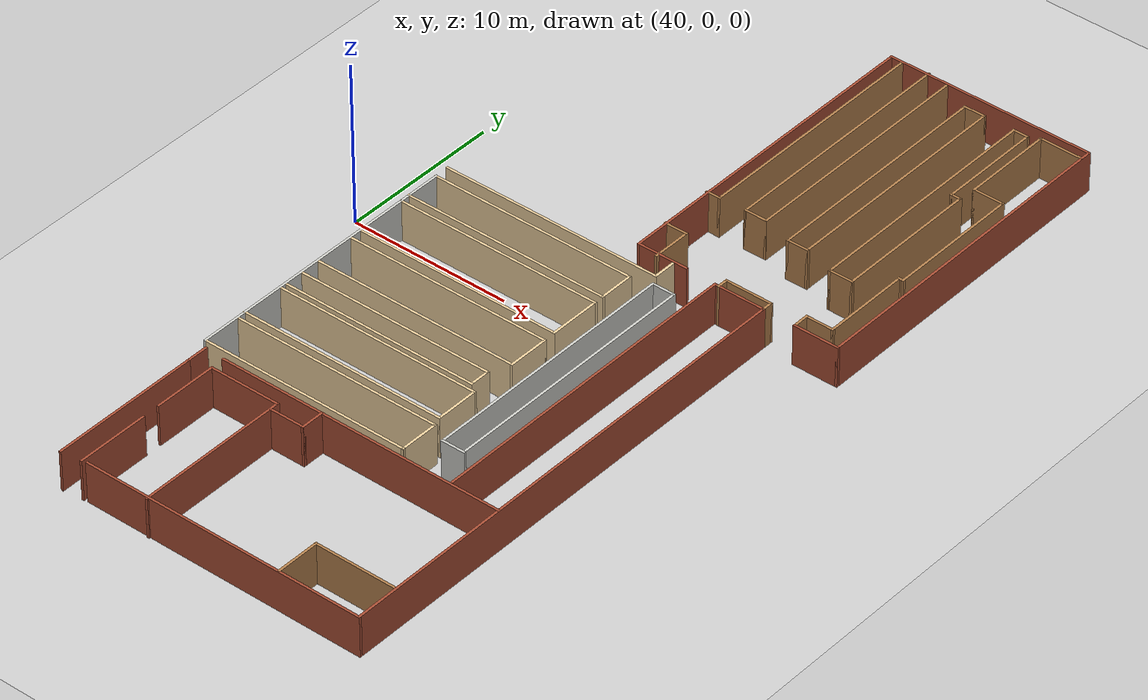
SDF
<sdf version="1.6">
 <world name="default">
  <model name="ground_plane">
   <static>1</static>
   <link name="link">
    <collision name="collision">
     <geometry><plane><normal>0 0 1</normal><size>100 100</size></plane></geometry>
     <surface><friction><ode><mu>100</mu><mu2>50</mu2></ode></friction></surface>
    </collision>
    <visual name="visual">
     <cast_shadows>0</cast_shadows>
     <geometry><plane><normal>0 0 1</normal><size>100 100</size></plane></geometry>
     <material>
      <script><uri>file://media/materials/scripts/gazebo.material</uri><name>Gazebo/Grey</name></script>
     </material>
    </visual>
   </link>
  </model>
  <model name="jeonju-2023">
   <pose>-5.65351 1.61412 0 0 -0 0</pose>
   <link name="Wall_113">
    <collision name="Wall_113_Collision">
     <geometry><box><size>20.779 0.15 2.5</size></box></geometry>
     <pose>0 0 1.25 0 -0 0</pose>
    </collision>
    <visual name="Wall_113_Visual">
     <pose>0 0 1.25 0 -0 0</pose>
     <geometry><box><size>20.779 0.15 2.5</size></box></geometry>
     <material>
      <script><uri>file://media/materials/scripts/gazebo.material</uri><name>Gazebo/Bricks</name></script>
      <ambient>1 1 1 1</ambient>
     </material>
    </visual>
    <pose>59.8935 14.256 0 0 -0 1.5708</pose>
   </link>
   <link name="Wall_114">
    <collision name="Wall_114_Collision">
     <geometry><box><size>13 0.15 2.5</size></box></geometry>
     <pose>0 0 1.25 0 -0 0</pose>
    </collision>
    <visual name="Wall_114_Visual">
     <pose>0 0 1.25 0 -0 0</pose>
     <geometry><box><size>13 0.15 2.5</size></box></geometry>
     <material>
      <script><uri>file://media/materials/scripts/gazebo.material</uri><name>Gazebo/Bricks</name></script>
      <ambient>1 1 1 1</ambient>
     </material>
    </visual>
    <pose>66.3185 24.5705 0 0 -0 0</pose>
   </link>
   <link name="Wall_115">
    <collision name="Wall_115_Collision">
     <geometry><box><size>20.85 0.15 2.5</size></box></geometry>
     <pose>0 0 1.25 0 -0 0</pose>
    </collision>
    <visual name="Wall_115_Visual">
     <pose>0 0 1.25 0 -0 0</pose>
     <geometry><box><size>20.85 0.15 2.5</size></box></geometry>
     <material>
      <script><uri>file://media/materials/scripts/gazebo.material</uri><name>Gazebo/Bricks</name></script>
      <ambient>1 1 1 1</ambient>
     </material>
    </visual>
    <pose>72.7435 14.2205 0 0 0 -1.5708</pose>
   </link>
   <link name="Wall_117">
    <collision name="Wall_117_Collision">
     <geometry><box><size>30.5 0.15 2.5</size></box></geometry>
     <pose>0 0 1.25 0 -0 0</pose>
    </collision>
    <visual name="Wall_117_Visual">
     <pose>0 0 1.25 0 -0 0</pose>
     <geometry><box><size>30.5 0.15 2.5</size></box></geometry>
     <material>
      <script><uri>file://media/materials/scripts/gazebo.material</uri><name>Gazebo/Bricks</name></script>
      <ambient>1 1 1 1</ambient>
     </material>
    </visual>
    <pose>68.0095 -11.3075 0 0 0 -1.5708</pose>
   </link>
   <link name="Wall_118">
    <collision name="Wall_118_Collision">
     <geometry><box><size>17.75 0.15 2.5</size></box></geometry>
     <pose>0 0 1.25 0 -0 0</pose>
    </collision>
    <visual name="Wall_118_Visual">
     <pose>0 0 1.25 0 -0 0</pose>
     <geometry><box><size>17.75 0.15 2.5</size></box></geometry>
     <material>
      <script><uri>file://media/materials/scripts/gazebo.material</uri><name>Gazebo/Bricks</name></script>
      <ambient>1 1 1 1</ambient>
     </material>
    </visual>
    <pose>59.2095 -26.4825 0 0 -0 3.14159</pose>
   </link>
   <link name="Wall_120">
    <collision name="Wall_120_Collision">
     <geometry><box><size>9.25 0.15 2.5</size></box></geometry>
     <pose>0 0 1.25 0 -0 0</pose>
    </collision>
    <visual name="Wall_120_Visual">
     <pose>0 0 1.25 0 -0 0</pose>
     <geometry><box><size>9.25 0.15 2.5</size></box></geometry>
     <material>
      <script><uri>file://media/materials/scripts/gazebo.material</uri><name>Gazebo/Bricks</name></script>
      <ambient>1 1 1 1</ambient>
     </material>
    </visual>
    <pose>48.8245 -22.1205 0 0 0 -1.5708</pose>
   </link>
   <link name="Wall_128">
    <collision name="Wall_128_Collision">
     <geometry><box><size>1.441 0.15 2.5</size></box></geometry>
     <pose>0 0 1.25 0 -0 0</pose>
    </collision>
    <visual name="Wall_128_Visual">
     <pose>0 0 1.25 0 -0 0</pose>
     <geometry><box><size>1.441 0.15 2.5</size></box></geometry>
     <material>
      <script><uri>file://media/materials/scripts/gazebo.material</uri><name>Gazebo/Bricks</name></script>
      <ambient>1 1 1 1</ambient>
     </material>
    </visual>
    <pose>48.8245 -16.925 0 0 0 -1.5708</pose>
   </link>
   <link name="Wall_135">
    <collision name="Wall_135_Collision">
     <geometry><box><size>2.869 0.15 2.5</size></box></geometry>
     <pose>0 0 1.25 0 -0 0</pose>
    </collision>
    <visual name="Wall_135_Visual">
     <pose>0 0 1.25 0 -0 0</pose>
     <geometry><box><size>2.869 0.15 2.5</size></box></geometry>
     <material>
      <script><uri>file://media/materials/scripts/gazebo.material</uri><name>Gazebo/Bricks</name></script>
      <ambient>1 1 1 1</ambient>
     </material>
    </visual>
    <pose>71.384 3.8705 0 0 -0 0</pose>
   </link>
   <link name="Wall_387">
    <collision name="Wall_387_Collision">
     <geometry><box><size>18 0.15 2.5</size></box></geometry>
     <pose>0 0 1.25 0 -0 0</pose>
    </collision>
    <visual name="Wall_387_Visual">
     <pose>0 0 1.25 0 -0 0</pose>
     <geometry><box><size>18 0.15 2.5</size></box></geometry>
     <material>
      <script><uri>file://media/materials/scripts/gazebo.material</uri><name>Gazebo/Bricks</name></script>
      <ambient>1 1 1 1</ambient>
     </material>
    </visual>
    <pose>59.0205 -16.3555 0 0 -0 0</pose>
   </link>
   <link name="Wall_389">
    <collision name="Wall_389_Collision">
     <geometry><box><size>4 0.15 2.5</size></box></geometry>
     <pose>0 0 1.25 0 -0 0</pose>
    </collision>
    <visual name="Wall_389_Visual">
     <pose>0 0 1.25 0 -0 0</pose>
     <geometry><box><size>4 0.15 2.5</size></box></geometry>
     <material>
      <script><uri>file://media/materials/scripts/gazebo.material</uri><name>Gazebo/Bricks</name></script>
      <ambient>1 1 1 1</ambient>
     </material>
    </visual>
    <pose>50.0955 -19.1445 0 0 -0 1.5708</pose>
   </link>
   <link name="Wall_390">
    <collision name="Wall_390_Collision">
     <geometry><box><size>4.5 0.15 2.5</size></box></geometry>
     <pose>0 0 1.25 0 -0 0</pose>
    </collision>
    <visual name="Wall_390_Visual">
     <pose>0 0 1.25 0 -0 0</pose>
     <geometry><box><size>4.5 0.15 2.5</size></box></geometry>
     <material>
      <script><uri>file://media/materials/scripts/gazebo.material</uri><name>Gazebo/Bricks</name></script>
      <ambient>1 1 1 1</ambient>
     </material>
    </visual>
    <pose>52.2705 -17.2195 0 0 -0 0</pose>
   </link>
   <link name="Wall_391">
    <collision name="Wall_391_Collision">
     <geometry><box><size>9.5 0.15 2.5</size></box></geometry>
     <pose>0 0 1.25 0 -0 0</pose>
    </collision>
    <visual name="Wall_391_Visual">
     <pose>0 0 1.25 0 -0 0</pose>
     <geometry><box><size>9.5 0.15 2.5</size></box></geometry>
     <material>
      <script><uri>file://media/materials/scripts/gazebo.material</uri><name>Gazebo/Bricks</name></script>
      <ambient>1 1 1 1</ambient>
     </material>
    </visual>
    <pose>54.4455 -21.8945 0 0 0 -1.5708</pose>
   </link>
   <link name="Wall_393">
    <collision name="Wall_393_Collision">
     <geometry><box><size>4.5 0.15 2.5</size></box></geometry>
     <pose>0 0 1.25 0 -0 0</pose>
    </collision>
    <visual name="Wall_393_Visual">
     <pose>0 0 1.25 0 -0 0</pose>
     <geometry><box><size>4.5 0.15 2.5</size></box></geometry>
     <material>
      <script><uri>file://media/materials/scripts/gazebo.material</uri><name>Gazebo/Bricks</name></script>
      <ambient>1 1 1 1</ambient>
     </material>
    </visual>
    <pose>50.0955 -24.3705 0 0 0 -1.5708</pose>
   </link>
   <link name="Wall_395">
    <collision name="Wall_395_Collision">
     <geometry><box><size>2.25 0.15 2.5</size></box></geometry>
     <pose>0 0 1.25 0 -0 0</pose>
    </collision>
    <visual name="Wall_395_Visual">
     <pose>0 0 1.25 0 -0 0</pose>
     <geometry><box><size>2.25 0.15 2.5</size></box></geometry>
     <material>
      <script><uri>file://media/materials/scripts/gazebo.material</uri><name>Gazebo/Bricks</name></script>
      <ambient>1 1 1 1</ambient>
     </material>
    </visual>
    <pose>55.5435 -17.7275 0 0 -0 0</pose>
   </link>
   <link name="Wall_396">
    <collision name="Wall_396_Collision">
     <geometry><box><size>1.5 0.15 2.5</size></box></geometry>
     <pose>0 0 1.25 0 -0 0</pose>
    </collision>
    <visual name="Wall_396_Visual">
     <pose>0 0 1.25 0 -0 0</pose>
     <geometry><box><size>1.5 0.15 2.5</size></box></geometry>
     <material>
      <script><uri>file://media/materials/scripts/gazebo.material</uri><name>Gazebo/Bricks</name></script>
      <ambient>1 1 1 1</ambient>
     </material>
    </visual>
    <pose>56.5935 -17.0525 0 0 -0 1.5708</pose>
   </link>
   <link name="Wall_398">
    <collision name="Wall_398_Collision">
     <geometry><box><size>2.75 0.15 2.5</size></box></geometry>
     <pose>0 0 1.25 0 -0 0</pose>
    </collision>
    <visual name="Wall_398_Visual">
     <pose>0 0 1.25 0 -0 0</pose>
     <geometry><box><size>2.75 0.15 2.5</size></box></geometry>
     <material>
      <script><uri>file://media/materials/scripts/gazebo.material</uri><name>Gazebo/Wood</name></script>
      <ambient>1 1 1 1</ambient>
     </material>
    </visual>
    <pose>62.9005 -25.1165 0 0 -0 1.5708</pose>
   </link>
   <link name="Wall_399">
    <collision name="Wall_399_Collision">
     <geometry><box><size>5.25 0.15 2.5</size></box></geometry>
     <pose>0 0 1.25 0 -0 0</pose>
    </collision>
    <visual name="Wall_399_Visual">
     <pose>0 0 1.25 0 -0 0</pose>
     <geometry><box><size>5.25 0.15 2.5</size></box></geometry>
     <material>
      <script><uri>file://media/materials/scripts/gazebo.material</uri><name>Gazebo/Wood</name></script>
      <ambient>1 1 1 1</ambient>
     </material>
    </visual>
    <pose>65.4505 -23.8165 0 0 -0 0</pose>
   </link>
   <link name="Wall_401">
    <collision name="Wall_401_Collision">
     <geometry><box><size>17.5502 0.15 2.5</size></box></geometry>
     <pose>0 0 1.25 0 -0 0</pose>
    </collision>
    <visual name="Wall_401_Visual">
     <pose>0 0 1.25 0 -0 0</pose>
     <geometry><box><size>17.5502 0.15 2.5</size></box></geometry>
     <material>
      <script><uri>file://media/materials/scripts/gazebo.material</uri><name>Gazebo/CeilingTiled</name></script>
      <ambient>0.921569 0.807843 0.615686 1</ambient>
     </material>
    </visual>
    <pose>48.3965 -7.1295 0 0 0 -1.5708</pose>
   </link>
   <link name="Wall_402">
    <collision name="Wall_402_Collision">
     <geometry><box><size>13.178 0.15 2.5</size></box></geometry>
     <pose>0 0 1.25 0 -0 0</pose>
    </collision>
    <visual name="Wall_402_Visual">
     <pose>0 0 1.25 0 -0 0</pose>
     <geometry><box><size>13.178 0.15 2.5</size></box></geometry>
     <material>
      <script><uri>file://media/materials/scripts/gazebo.material</uri><name>Gazebo/Grey</name></script>
      <ambient>0.921569 0.807843 0.615686 1</ambient>
     </material>
    </visual>
    <pose>54.9105 -15.8295 0 0 -0 0</pose>
   </link>
   <link name="Wall_403">
    <collision name="Wall_403_Collision">
     <geometry><box><size>2.504 0.15 2.5</size></box></geometry>
     <pose>0 0 1.25 0 -0 0</pose>
    </collision>
    <visual name="Wall_403_Visual">
     <pose>0 0 1.25 0 -0 0</pose>
     <geometry><box><size>2.504 0.15 2.5</size></box></geometry>
     <material>
      <script><uri>file://media/materials/scripts/gazebo.material</uri><name>Gazebo/Grey</name></script>
      <ambient>0.921569 0.807843 0.615686 1</ambient>
     </material>
    </visual>
    <pose>61.4245 -14.6525 0 0 -0 1.5708</pose>
   </link>
   <link name="Wall_404">
    <collision name="Wall_404_Collision">
     <geometry><box><size>13.0678 0.15 2.5</size></box></geometry>
     <pose>0 0 1.25 0 -0 0</pose>
    </collision>
    <visual name="Wall_404_Visual">
     <pose>0 0 1.25 0 -0 0</pose>
     <geometry><box><size>13.0678 0.15 2.5</size></box></geometry>
     <material>
      <script><uri>file://media/materials/scripts/gazebo.material</uri><name>Gazebo/Grey</name></script>
      <ambient>0.921569 0.807843 0.615686 1</ambient>
     </material>
    </visual>
    <pose>54.9655 -13.4755 0 0 -0 3.14159</pose>
   </link>
   <link name="Wall_406">
    <collision name="Wall_406_Collision">
     <geometry><box><size>13 0.15 2.5</size></box></geometry>
     <pose>0 0 1.25 0 -0 0</pose>
    </collision>
    <visual name="Wall_406_Visual">
     <pose>0 0 1.25 0 -0 0</pose>
     <geometry><box><size>13 0.15 2.5</size></box></geometry>
     <material>
      <script><uri>file://media/materials/scripts/gazebo.material</uri><name>Gazebo/Grey</name></script>
      <ambient>0.921569 0.807843 0.615686 1</ambient>
     </material>
    </visual>
    <pose>54.8135 -12.9205 0 0 -0 0</pose>
   </link>
   <link name="Wall_407">
    <collision name="Wall_407_Collision">
     <geometry><box><size>2.75 0.15 2.5</size></box></geometry>
     <pose>0 0 1.25 0 -0 0</pose>
    </collision>
    <visual name="Wall_407_Visual">
     <pose>0 0 1.25 0 -0 0</pose>
     <geometry><box><size>2.75 0.15 2.5</size></box></geometry>
     <material>
      <script><uri>file://media/materials/scripts/gazebo.material</uri><name>Gazebo/Grey</name></script>
      <ambient>0.921569 0.807843 0.615686 1</ambient>
     </material>
    </visual>
    <pose>61.2385 -11.6205 0 0 -0 1.5708</pose>
   </link>
   <link name="Wall_408">
    <collision name="Wall_408_Collision">
     <geometry><box><size>13 0.15 2.5</size></box></geometry>
     <pose>0 0 1.25 0 -0 0</pose>
    </collision>
    <visual name="Wall_408_Visual">
     <pose>0 0 1.25 0 -0 0</pose>
     <geometry><box><size>13 0.15 2.5</size></box></geometry>
     <material>
      <script><uri>file://media/materials/scripts/gazebo.material</uri><name>Gazebo/Grey</name></script>
      <ambient>0.921569 0.807843 0.615686 1</ambient>
     </material>
    </visual>
    <pose>54.8135 -10.3205 0 0 -0 3.14159</pose>
   </link>
   <link name="Wall_410">
    <collision name="Wall_410_Collision">
     <geometry><box><size>12.4249 0.15 2.5</size></box></geometry>
     <pose>0 0 1.25 0 -0 0</pose>
    </collision>
    <visual name="Wall_410_Visual">
     <pose>0 0 1.25 0 -0 0</pose>
     <geometry><box><size>12.4249 0.15 2.5</size></box></geometry>
     <material>
      <script><uri>file://media/materials/scripts/gazebo.material</uri><name>Gazebo/Grey</name></script>
      <ambient>0.921569 0.807843 0.615686 1</ambient>
     </material>
    </visual>
    <pose>54.587 -9.9235 0 0 -0 0</pose>
   </link>
   <link name="Wall_411">
    <collision name="Wall_411_Collision">
     <geometry><box><size>1.344 0.15 2.5</size></box></geometry>
     <pose>0 0 1.25 0 -0 0</pose>
    </collision>
    <visual name="Wall_411_Visual">
     <pose>0 0 1.25 0 -0 0</pose>
     <geometry><box><size>1.344 0.15 2.5</size></box></geometry>
     <material>
      <script><uri>file://media/materials/scripts/gazebo.material</uri><name>Gazebo/Grey</name></script>
      <ambient>0.921569 0.807843 0.615686 1</ambient>
     </material>
    </visual>
    <pose>60.7245 -9.3265 0 0 -0 1.5708</pose>
   </link>
   <link name="Wall_412">
    <collision name="Wall_412_Collision">
     <geometry><box><size>12.425 0.15 2.5</size></box></geometry>
     <pose>0 0 1.25 0 -0 0</pose>
    </collision>
    <visual name="Wall_412_Visual">
     <pose>0 0 1.25 0 -0 0</pose>
     <geometry><box><size>12.425 0.15 2.5</size></box></geometry>
     <material>
      <script><uri>file://media/materials/scripts/gazebo.material</uri><name>Gazebo/Grey</name></script>
      <ambient>0.921569 0.807843 0.615686 1</ambient>
     </material>
    </visual>
    <pose>54.587 -8.7295 0 0 -0 3.14159</pose>
   </link>
   <link name="Wall_414">
    <collision name="Wall_414_Collision">
     <geometry><box><size>13 0.15 2.5</size></box></geometry>
     <pose>0 0 1.25 0 -0 0</pose>
    </collision>
    <visual name="Wall_414_Visual">
     <pose>0 0 1.25 0 -0 0</pose>
     <geometry><box><size>13 0.15 2.5</size></box></geometry>
     <material>
      <script><uri>file://media/materials/scripts/gazebo.material</uri><name>Gazebo/Grey</name></script>
      <ambient>0.921569 0.807843 0.615686 1</ambient>
     </material>
    </visual>
    <pose>54.8445 -7.5055 0 0 -0 0</pose>
   </link>
   <link name="Wall_415">
    <collision name="Wall_415_Collision">
     <geometry><box><size>2.6263 0.15 2.5</size></box></geometry>
     <pose>0 0 1.25 0 -0 0</pose>
    </collision>
    <visual name="Wall_415_Visual">
     <pose>0 0 1.25 0 -0 0</pose>
     <geometry><box><size>2.6263 0.15 2.5</size></box></geometry>
     <material>
      <script><uri>file://media/materials/scripts/gazebo.material</uri><name>Gazebo/Grey</name></script>
      <ambient>0.921569 0.807843 0.615686 1</ambient>
     </material>
    </visual>
    <pose>61.2695 -6.2675 0 0 -0 1.5708</pose>
   </link>
   <link name="Wall_416">
    <collision name="Wall_416_Collision">
     <geometry><box><size>13 0.15 2.5</size></box></geometry>
     <pose>0 0 1.25 0 -0 0</pose>
    </collision>
    <visual name="Wall_416_Visual">
     <pose>0 0 1.25 0 -0 0</pose>
     <geometry><box><size>13 0.15 2.5</size></box></geometry>
     <material>
      <script><uri>file://media/materials/scripts/gazebo.material</uri><name>Gazebo/Grey</name></script>
      <ambient>0.921569 0.807843 0.615686 1</ambient>
     </material>
    </visual>
    <pose>54.8445 -5.0295 0 0 -0 3.14159</pose>
   </link>
   <link name="Wall_418">
    <collision name="Wall_418_Collision">
     <geometry><box><size>13 0.15 2.5</size></box></geometry>
     <pose>0 0 1.25 0 -0 0</pose>
    </collision>
    <visual name="Wall_418_Visual">
     <pose>0 0 1.25 0 -0 0</pose>
     <geometry><box><size>13 0.15 2.5</size></box></geometry>
     <material>
      <script><uri>file://media/materials/scripts/gazebo.material</uri><name>Gazebo/Grey</name></script>
      <ambient>0.921569 0.807843 0.615686 1</ambient>
     </material>
    </visual>
    <pose>54.8285 -4.2665 0 0 -0 0</pose>
   </link>
   <link name="Wall_419">
    <collision name="Wall_419_Collision">
     <geometry><box><size>3.28684 0.15 2.5</size></box></geometry>
     <pose>0 0 1.25 0 -0 0</pose>
    </collision>
    <visual name="Wall_419_Visual">
     <pose>0 0 1.25 0 -0 0</pose>
     <geometry><box><size>3.28684 0.15 2.5</size></box></geometry>
     <material>
      <script><uri>file://media/materials/scripts/gazebo.material</uri><name>Gazebo/Grey</name></script>
      <ambient>0.921569 0.807843 0.615686 1</ambient>
     </material>
    </visual>
    <pose>61.2535 -2.698 0 0 -0 1.5708</pose>
   </link>
   <link name="Wall_420">
    <collision name="Wall_420_Collision">
     <geometry><box><size>13 0.15 2.5</size></box></geometry>
     <pose>0 0 1.25 0 -0 0</pose>
    </collision>
    <visual name="Wall_420_Visual">
     <pose>0 0 1.25 0 -0 0</pose>
     <geometry><box><size>13 0.15 2.5</size></box></geometry>
     <material>
      <script><uri>file://media/materials/scripts/gazebo.material</uri><name>Gazebo/Grey</name></script>
      <ambient>0.921569 0.807843 0.615686 1</ambient>
     </material>
    </visual>
    <pose>54.8285 -1.1295 0 0 -0 3.14159</pose>
   </link>
   <link name="Wall_422">
    <collision name="Wall_422_Collision">
     <geometry><box><size>13 0.15 2.5</size></box></geometry>
     <pose>0 0 1.25 0 -0 0</pose>
    </collision>
    <visual name="Wall_422_Visual">
     <pose>0 0 1.25 0 -0 0</pose>
     <geometry><box><size>13 0.15 2.5</size></box></geometry>
     <material>
      <script><uri>file://media/materials/scripts/gazebo.material</uri><name>Gazebo/Grey</name></script>
      <ambient>0.921569 0.807843 0.615686 1</ambient>
     </material>
    </visual>
    <pose>54.8215 1.5705 0 0 -0 0</pose>
   </link>
   <link name="Wall_423">
    <collision name="Wall_423_Collision">
     <geometry><box><size>2.25 0.15 2.5</size></box></geometry>
     <pose>0 0 1.25 0 -0 0</pose>
    </collision>
    <visual name="Wall_423_Visual">
     <pose>0 0 1.25 0 -0 0</pose>
     <geometry><box><size>2.25 0.15 2.5</size></box></geometry>
     <material>
      <script><uri>file://media/materials/scripts/gazebo.material</uri><name>Gazebo/Grey</name></script>
      <ambient>0.921569 0.807843 0.615686 1</ambient>
     </material>
    </visual>
    <pose>61.2465 0.5205 0 0 0 -1.5708</pose>
   </link>
   <link name="Wall_424">
    <collision name="Wall_424_Collision">
     <geometry><box><size>13 0.15 2.5</size></box></geometry>
     <pose>0 0 1.25 0 -0 0</pose>
    </collision>
    <visual name="Wall_424_Visual">
     <pose>0 0 1.25 0 -0 0</pose>
     <geometry><box><size>13 0.15 2.5</size></box></geometry>
     <material>
      <script><uri>file://media/materials/scripts/gazebo.material</uri><name>Gazebo/Grey</name></script>
      <ambient>0.921569 0.807843 0.615686 1</ambient>
     </material>
    </visual>
    <pose>54.8215 -0.5295 0 0 -0 3.14159</pose>
   </link>
   <link name="Wall_427">
    <collision name="Wall_427_Collision">
     <geometry><box><size>14 0.15 2.5</size></box></geometry>
     <pose>0 0 1.25 0 -0 0</pose>
    </collision>
    <visual name="Wall_427_Visual">
     <pose>0 0 1.25 0 -0 0</pose>
     <geometry><box><size>14 0.15 2.5</size></box></geometry>
     <material>
      <script><uri>file://media/materials/scripts/gazebo.material</uri><name>Gazebo/Grey</name></script>
      <ambient>0.921569 0.807843 0.615686 1</ambient>
     </material>
    </visual>
    <pose>55.2985 2.4705 0 0 -0 0</pose>
   </link>
   <link name="Wall_428">
    <collision name="Wall_428_Collision">
     <geometry><box><size>1.45 0.15 2.5</size></box></geometry>
     <pose>0 0 1.25 0 -0 0</pose>
    </collision>
    <visual name="Wall_428_Visual">
     <pose>0 0 1.25 0 -0 0</pose>
     <geometry><box><size>1.45 0.15 2.5</size></box></geometry>
     <material>
      <script><uri>file://media/materials/scripts/gazebo.material</uri><name>Gazebo/Grey</name></script>
      <ambient>0.921569 0.807843 0.615686 1</ambient>
     </material>
    </visual>
    <pose>62.2235 3.1205 0 0 -0 1.5708</pose>
   </link>
   <link name="Wall_430">
    <collision name="Wall_430_Collision">
     <geometry><box><size>1.506 0.15 2.5</size></box></geometry>
     <pose>0 0 1.25 0 -0 0</pose>
    </collision>
    <visual name="Wall_430_Visual">
     <pose>0 0 1.25 0 -0 0</pose>
     <geometry><box><size>1.506 0.15 2.5</size></box></geometry>
     <material>
      <script><uri>file://media/materials/scripts/gazebo.material</uri><name>Gazebo/CeilingTiled</name></script>
      <ambient>0.435294 0.796078 0.67451 1</ambient>
     </material>
    </visual>
    <pose>63.1775 1.9005 0 0 -0 0</pose>
   </link>
   <link name="Wall_431">
    <collision name="Wall_431_Collision">
     <geometry><box><size>16.18 0.15 2.5</size></box></geometry>
     <pose>0 0 1.25 0 -0 0</pose>
    </collision>
    <visual name="Wall_431_Visual">
     <pose>0 0 1.25 0 -0 0</pose>
     <geometry><box><size>16.18 0.15 2.5</size></box></geometry>
     <material>
      <script><uri>file://media/materials/scripts/gazebo.material</uri><name>Gazebo/CeilingTiled</name></script>
      <ambient>0.435294 0.796078 0.67451 1</ambient>
     </material>
    </visual>
    <pose>63.8555 -6.1145 0 0 0 -1.5708</pose>
   </link>
   <link name="Wall_432">
    <collision name="Wall_432_Collision">
     <geometry><box><size>1.506 0.15 2.5</size></box></geometry>
     <pose>0 0 1.25 0 -0 0</pose>
    </collision>
    <visual name="Wall_432_Visual">
     <pose>0 0 1.25 0 -0 0</pose>
     <geometry><box><size>1.506 0.15 2.5</size></box></geometry>
     <material>
      <script><uri>file://media/materials/scripts/gazebo.material</uri><name>Gazebo/CeilingTiled</name></script>
      <ambient>0.435294 0.796078 0.67451 1</ambient>
     </material>
    </visual>
    <pose>63.1775 -14.1295 0 0 -0 3.14159</pose>
   </link>
   <link name="Wall_433">
    <collision name="Wall_433_Collision">
     <geometry><box><size>16.18 0.15 2.5</size></box></geometry>
     <pose>0 0 1.25 0 -0 0</pose>
    </collision>
    <visual name="Wall_433_Visual">
     <pose>0 0 1.25 0 -0 0</pose>
     <geometry><box><size>16.18 0.15 2.5</size></box></geometry>
     <material>
      <script><uri>file://media/materials/scripts/gazebo.material</uri><name>Gazebo/CeilingTiled</name></script>
      <ambient>0.435294 0.796078 0.67451 1</ambient>
     </material>
    </visual>
    <pose>62.4995 -6.1145 0 0 -0 1.5708</pose>
   </link>
   <link name="Wall_435">
    <collision name="Wall_435_Collision">
     <geometry><box><size>3.25 0.15 2.5</size></box></geometry>
     <pose>0 0 1.25 0 -0 0</pose>
    </collision>
    <visual name="Wall_435_Visual">
     <pose>0 0 1.25 0 -0 0</pose>
     <geometry><box><size>3.25 0.15 2.5</size></box></geometry>
     <material>
      <script><uri>file://media/materials/scripts/gazebo.material</uri><name>Gazebo/Bricks</name></script>
      <ambient>1 1 1 1</ambient>
     </material>
    </visual>
    <pose>66.4595 3.8675 0 0 -0 3.14159</pose>
   </link>
   <link name="Wall_436">
    <collision name="Wall_436_Collision">
     <geometry><box><size>20.25 0.15 2.5</size></box></geometry>
     <pose>0 0 1.25 0 -0 0</pose>
    </collision>
    <visual name="Wall_436_Visual">
     <pose>0 0 1.25 0 -0 0</pose>
     <geometry><box><size>20.25 0.15 2.5</size></box></geometry>
     <material>
      <script><uri>file://media/materials/scripts/gazebo.material</uri><name>Gazebo/Bricks</name></script>
      <ambient>1 1 1 1</ambient>
     </material>
    </visual>
    <pose>64.9095 -6.1825 0 0 0 -1.5708</pose>
   </link>
   <link name="Wall_438">
    <collision name="Wall_438_Collision">
     <geometry><box><size>3.25 0.15 2.5</size></box></geometry>
     <pose>0 0 1.25 0 -0 0</pose>
    </collision>
    <visual name="Wall_438_Visual">
     <pose>0 0 1.25 0 -0 0</pose>
     <geometry><box><size>3.25 0.15 2.5</size></box></geometry>
     <material>
      <script><uri>file://media/materials/scripts/gazebo.material</uri><name>Gazebo/Bricks</name></script>
      <ambient>1 1 1 1</ambient>
     </material>
    </visual>
    <pose>61.4435 3.9415 0 0 -0 0</pose>
   </link>
   <link name="Wall_440">
    <collision name="Wall_440_Collision">
     <geometry><box><size>1.5 0.15 2.5</size></box></geometry>
     <pose>0 0 1.25 0 -0 0</pose>
    </collision>
    <visual name="Wall_440_Visual">
     <pose>0 0 1.25 0 -0 0</pose>
     <geometry><box><size>1.5 0.15 2.5</size></box></geometry>
     <material>
      <script><uri>file://media/materials/scripts/gazebo.material</uri><name>Gazebo/Wood</name></script>
      <ambient>1 1 1 1</ambient>
     </material>
    </visual>
    <pose>60.5215 6.1105 0 0 -0 0</pose>
   </link>
   <link name="Wall_441">
    <collision name="Wall_441_Collision">
     <geometry><box><size>2.5 0.15 2.5</size></box></geometry>
     <pose>0 0 1.25 0 -0 0</pose>
    </collision>
    <visual name="Wall_441_Visual">
     <pose>0 0 1.25 0 -0 0</pose>
     <geometry><box><size>2.5 0.15 2.5</size></box></geometry>
     <material>
      <script><uri>file://media/materials/scripts/gazebo.material</uri><name>Gazebo/Wood</name></script>
      <ambient>1 1 1 1</ambient>
     </material>
    </visual>
    <pose>61.1965 4.9355 0 0 0 -1.5708</pose>
   </link>
   <link name="Wall_443">
    <collision name="Wall_443_Collision">
     <geometry><box><size>0.955 0.15 2.5</size></box></geometry>
     <pose>0 0 1.25 0 -0 0</pose>
    </collision>
    <visual name="Wall_443_Visual">
     <pose>0 0 1.25 0 -0 0</pose>
     <geometry><box><size>0.955 0.15 2.5</size></box></geometry>
     <material>
      <script><uri>file://media/materials/scripts/gazebo.material</uri><name>Gazebo/Wood</name></script>
      <ambient>1 1 1 1</ambient>
     </material>
    </visual>
    <pose>60.227 9.4685 0 0 -0 0</pose>
   </link>
   <link name="Wall_444">
    <collision name="Wall_444_Collision">
     <geometry><box><size>15.25 0.15 2.5</size></box></geometry>
     <pose>0 0 1.25 0 -0 0</pose>
    </collision>
    <visual name="Wall_444_Visual">
     <pose>0 0 1.25 0 -0 0</pose>
     <geometry><box><size>15.25 0.15 2.5</size></box></geometry>
     <material>
      <script><uri>file://media/materials/scripts/gazebo.material</uri><name>Gazebo/Wood</name></script>
      <ambient>1 1 1 1</ambient>
     </material>
    </visual>
    <pose>60.6295 17.0185 0 0 -0 1.5708</pose>
   </link>
   <link name="Wall_446">
    <collision name="Wall_446_Collision">
     <geometry><box><size>15.25 0.15 2.5</size></box></geometry>
     <pose>0 0 1.25 0 -0 0</pose>
    </collision>
    <visual name="Wall_446_Visual">
     <pose>0 0 1.25 0 -0 0</pose>
     <geometry><box><size>15.25 0.15 2.5</size></box></geometry>
     <material>
      <script><uri>file://media/materials/scripts/gazebo.material</uri><name>Gazebo/Wood</name></script>
      <ambient>1 1 1 1</ambient>
     </material>
    </visual>
    <pose>62.2875 17.0885 0 0 0 -1.5708</pose>
   </link>
   <link name="Wall_447">
    <collision name="Wall_447_Collision">
     <geometry><box><size>1.4867 0.15 2.5</size></box></geometry>
     <pose>0 0 1.25 0 -0 0</pose>
    </collision>
    <visual name="Wall_447_Visual">
     <pose>0 0 1.25 0 -0 0</pose>
     <geometry><box><size>1.4867 0.15 2.5</size></box></geometry>
     <material>
      <script><uri>file://media/materials/scripts/gazebo.material</uri><name>Gazebo/Wood</name></script>
      <ambient>1 1 1 1</ambient>
     </material>
    </visual>
    <pose>62.956 9.5385 0 0 -0 0</pose>
   </link>
   <link name="Wall_448">
    <collision name="Wall_448_Collision">
     <geometry><box><size>15 0.15 2.5</size></box></geometry>
     <pose>0 0 1.25 0 -0 0</pose>
    </collision>
    <visual name="Wall_448_Visual">
     <pose>0 0 1.25 0 -0 0</pose>
     <geometry><box><size>15 0.15 2.5</size></box></geometry>
     <material>
      <script><uri>file://media/materials/scripts/gazebo.material</uri><name>Gazebo/Wood</name></script>
      <ambient>1 1 1 1</ambient>
     </material>
    </visual>
    <pose>63.6245 16.9635 0 0 -0 1.5708</pose>
   </link>
   <link name="Wall_450">
    <collision name="Wall_450_Collision">
     <geometry><box><size>1.40006 0.15 2.5</size></box></geometry>
     <pose>0 0 1.25 0 -0 0</pose>
    </collision>
    <visual name="Wall_450_Visual">
     <pose>0 0 1.25 0 -0 0</pose>
     <geometry><box><size>1.40006 0.15 2.5</size></box></geometry>
     <material>
      <script><uri>file://media/materials/scripts/gazebo.material</uri><name>Gazebo/Wood</name></script>
      <ambient>1 1 1 1</ambient>
     </material>
    </visual>
    <pose>66.0995 23.6035 0 0 -0 0</pose>
   </link>
   <link name="Wall_451">
    <collision name="Wall_451_Collision">
     <geometry><box><size>14.75 0.15 2.5</size></box></geometry>
     <pose>0 0 1.25 0 -0 0</pose>
    </collision>
    <visual name="Wall_451_Visual">
     <pose>0 0 1.25 0 -0 0</pose>
     <geometry><box><size>14.75 0.15 2.5</size></box></geometry>
     <material>
      <script><uri>file://media/materials/scripts/gazebo.material</uri><name>Gazebo/Wood</name></script>
      <ambient>1 1 1 1</ambient>
     </material>
    </visual>
    <pose>66.7245 16.3035 0 0 0 -1.5708</pose>
   </link>
   <link name="Wall_452">
    <collision name="Wall_452_Collision">
     <geometry><box><size>1.40006 0.15 2.5</size></box></geometry>
     <pose>0 0 1.25 0 -0 0</pose>
    </collision>
    <visual name="Wall_452_Visual">
     <pose>0 0 1.25 0 -0 0</pose>
     <geometry><box><size>1.40006 0.15 2.5</size></box></geometry>
     <material>
      <script><uri>file://media/materials/scripts/gazebo.material</uri><name>Gazebo/Wood</name></script>
      <ambient>1 1 1 1</ambient>
     </material>
    </visual>
    <pose>66.0995 9.0035 0 0 -0 3.14159</pose>
   </link>
   <link name="Wall_453">
    <collision name="Wall_453_Collision">
     <geometry><box><size>14.75 0.15 2.5</size></box></geometry>
     <pose>0 0 1.25 0 -0 0</pose>
    </collision>
    <visual name="Wall_453_Visual">
     <pose>0 0 1.25 0 -0 0</pose>
     <geometry><box><size>14.75 0.15 2.5</size></box></geometry>
     <material>
      <script><uri>file://media/materials/scripts/gazebo.material</uri><name>Gazebo/Wood</name></script>
      <ambient>1 1 1 1</ambient>
     </material>
    </visual>
    <pose>65.4745 16.3035 0 0 -0 1.5708</pose>
   </link>
   <link name="Wall_455">
    <collision name="Wall_455_Collision">
     <geometry><box><size>1.00603 0.15 2.5</size></box></geometry>
     <pose>0 0 1.25 0 -0 0</pose>
    </collision>
    <visual name="Wall_455_Visual">
     <pose>0 0 1.25 0 -0 0</pose>
     <geometry><box><size>1.00603 0.15 2.5</size></box></geometry>
     <material>
      <script><uri>file://media/materials/scripts/gazebo.material</uri><name>Gazebo/Wood</name></script>
      <ambient>1 1 1 1</ambient>
     </material>
    </visual>
    <pose>69.0625 23.6385 0 0 -0 0</pose>
   </link>
   <link name="Wall_456">
    <collision name="Wall_456_Collision">
     <geometry><box><size>6.5 0.15 2.5</size></box></geometry>
     <pose>0 0 1.25 0 -0 0</pose>
    </collision>
    <visual name="Wall_456_Visual">
     <pose>0 0 1.25 0 -0 0</pose>
     <geometry><box><size>6.5 0.15 2.5</size></box></geometry>
     <material>
      <script><uri>file://media/materials/scripts/gazebo.material</uri><name>Gazebo/Wood</name></script>
      <ambient>1 1 1 1</ambient>
     </material>
    </visual>
    <pose>69.4905 20.4635 0 0 0 -1.5708</pose>
   </link>
   <link name="Wall_457">
    <collision name="Wall_457_Collision">
     <geometry><box><size>0.683974 0.15 2.5</size></box></geometry>
     <pose>0 0 1.25 0 -0 0</pose>
    </collision>
    <visual name="Wall_457_Visual">
     <pose>0 0 1.25 0 -0 0</pose>
     <geometry><box><size>0.683974 0.15 2.5</size></box></geometry>
     <material>
      <script><uri>file://media/materials/scripts/gazebo.material</uri><name>Gazebo/Wood</name></script>
      <ambient>1 1 1 1</ambient>
     </material>
    </visual>
    <pose>69.7575 17.2885 0 0 -0 0</pose>
   </link>
   <link name="Wall_458">
    <collision name="Wall_458_Collision">
     <geometry><box><size>9 0.15 2.5</size></box></geometry>
     <pose>0 0 1.25 0 -0 0</pose>
    </collision>
    <visual name="Wall_458_Visual">
     <pose>0 0 1.25 0 -0 0</pose>
     <geometry><box><size>9 0.15 2.5</size></box></geometry>
     <material>
      <script><uri>file://media/materials/scripts/gazebo.material</uri><name>Gazebo/Wood</name></script>
      <ambient>1 1 1 1</ambient>
     </material>
    </visual>
    <pose>70.0245 12.8635 0 0 0 -1.5708</pose>
   </link>
   <link name="Wall_459">
    <collision name="Wall_459_Collision">
     <geometry><box><size>1.55 0.15 2.5</size></box></geometry>
     <pose>0 0 1.25 0 -0 0</pose>
    </collision>
    <visual name="Wall_459_Visual">
     <pose>0 0 1.25 0 -0 0</pose>
     <geometry><box><size>1.55 0.15 2.5</size></box></geometry>
     <material>
      <script><uri>file://media/materials/scripts/gazebo.material</uri><name>Gazebo/Wood</name></script>
      <ambient>1 1 1 1</ambient>
     </material>
    </visual>
    <pose>69.3245 8.4385 0 0 -0 3.14159</pose>
   </link>
   <link name="Wall_460">
    <collision name="Wall_460_Collision">
     <geometry><box><size>15.35 0.15 2.5</size></box></geometry>
     <pose>0 0 1.25 0 -0 0</pose>
    </collision>
    <visual name="Wall_460_Visual">
     <pose>0 0 1.25 0 -0 0</pose>
     <geometry><box><size>15.35 0.15 2.5</size></box></geometry>
     <material>
      <script><uri>file://media/materials/scripts/gazebo.material</uri><name>Gazebo/Wood</name></script>
      <ambient>1 1 1 1</ambient>
     </material>
    </visual>
    <pose>68.6245 16.0385 0 0 -0 1.5708</pose>
   </link>
   <link name="Wall_466">
    <collision name="Wall_466_Collision">
     <geometry><box><size>2.75 0.15 2.5</size></box></geometry>
     <pose>0 0 1.25 0 -0 0</pose>
    </collision>
    <visual name="Wall_466_Visual">
     <pose>0 0 1.25 0 -0 0</pose>
     <geometry><box><size>2.75 0.15 2.5</size></box></geometry>
     <material>
      <script><uri>file://media/materials/scripts/gazebo.material</uri><name>Gazebo/Wood</name></script>
      <ambient>1 1 1 1</ambient>
     </material>
    </visual>
    <pose>71.4205 23.9595 0 0 -0 3.14159</pose>
   </link>
   <link name="Wall_467">
    <collision name="Wall_467_Collision">
     <geometry><box><size>5.75 0.15 2.5</size></box></geometry>
     <pose>0 0 1.25 0 -0 0</pose>
    </collision>
    <visual name="Wall_467_Visual">
     <pose>0 0 1.25 0 -0 0</pose>
     <geometry><box><size>5.75 0.15 2.5</size></box></geometry>
     <material>
      <script><uri>file://media/materials/scripts/gazebo.material</uri><name>Gazebo/Wood</name></script>
      <ambient>1 1 1 1</ambient>
     </material>
    </visual>
    <pose>70.1205 21.1595 0 0 0 -1.5708</pose>
   </link>
   <link name="Wall_468">
    <collision name="Wall_468_Collision">
     <geometry><box><size>1.95401 0.15 2.5</size></box></geometry>
     <pose>0 0 1.25 0 -0 0</pose>
    </collision>
    <visual name="Wall_468_Visual">
     <pose>0 0 1.25 0 -0 0</pose>
     <geometry><box><size>1.95401 0.15 2.5</size></box></geometry>
     <material>
      <script><uri>file://media/materials/scripts/gazebo.material</uri><name>Gazebo/Wood</name></script>
      <ambient>1 1 1 1</ambient>
     </material>
    </visual>
    <pose>71.0225 18.3595 0 0 -0 0</pose>
   </link>
   <link name="Wall_469">
    <collision name="Wall_469_Collision">
     <geometry><box><size>8.339 0.15 2.5</size></box></geometry>
     <pose>0 0 1.25 0 -0 0</pose>
    </collision>
    <visual name="Wall_469_Visual">
     <pose>0 0 1.25 0 -0 0</pose>
     <geometry><box><size>8.339 0.15 2.5</size></box></geometry>
     <material>
      <script><uri>file://media/materials/scripts/gazebo.material</uri><name>Gazebo/Wood</name></script>
      <ambient>1 1 1 1</ambient>
     </material>
    </visual>
    <pose>71.9245 14.265 0 0 0 -1.5708</pose>
   </link>
   <link name="Wall_470">
    <collision name="Wall_470_Collision">
     <geometry><box><size>0.404 0.15 2.5</size></box></geometry>
     <pose>0 0 1.25 0 -0 0</pose>
    </collision>
    <visual name="Wall_470_Visual">
     <pose>0 0 1.25 0 -0 0</pose>
     <geometry><box><size>0.404 0.15 2.5</size></box></geometry>
     <material>
      <script><uri>file://media/materials/scripts/gazebo.material</uri><name>Gazebo/Wood</name></script>
      <ambient>1 1 1 1</ambient>
     </material>
    </visual>
    <pose>71.7975 10.1705 0 0 -0 3.14159</pose>
   </link>
   <link name="Wall_471">
    <collision name="Wall_471_Collision">
     <geometry><box><size>5.498 0.15 2.5</size></box></geometry>
     <pose>0 0 1.25 0 -0 0</pose>
    </collision>
    <visual name="Wall_471_Visual">
     <pose>0 0 1.25 0 -0 0</pose>
     <geometry><box><size>5.498 0.15 2.5</size></box></geometry>
     <material>
      <script><uri>file://media/materials/scripts/gazebo.material</uri><name>Gazebo/Wood</name></script>
      <ambient>1 1 1 1</ambient>
     </material>
    </visual>
    <pose>71.6705 7.4965 0 0 0 -1.5708</pose>
   </link>
   <link name="Wall_472">
    <collision name="Wall_472_Collision">
     <geometry><box><size>1.79599 0.15 2.5</size></box></geometry>
     <pose>0 0 1.25 0 -0 0</pose>
    </collision>
    <visual name="Wall_472_Visual">
     <pose>0 0 1.25 0 -0 0</pose>
     <geometry><box><size>1.79599 0.15 2.5</size></box></geometry>
     <material>
      <script><uri>file://media/materials/scripts/gazebo.material</uri><name>Gazebo/Wood</name></script>
      <ambient>1 1 1 1</ambient>
     </material>
    </visual>
    <pose>70.8475 4.8225 0 0 -0 3.14159</pose>
   </link>
   <link name="Wall_473">
    <collision name="Wall_473_Collision">
     <geometry><box><size>1.102 0.15 2.5</size></box></geometry>
     <pose>0 0 1.25 0 -0 0</pose>
    </collision>
    <visual name="Wall_473_Visual">
     <pose>0 0 1.25 0 -0 0</pose>
     <geometry><box><size>1.102 0.15 2.5</size></box></geometry>
     <material>
      <script><uri>file://media/materials/scripts/gazebo.material</uri><name>Gazebo/Wood</name></script>
      <ambient>1 1 1 1</ambient>
     </material>
    </visual>
    <pose>70.0245 4.3465 0 0 0 -1.5708</pose>
   </link>
   <link name="Wall_475">
    <collision name="Wall_475_Collision">
     <geometry><box><size>0.75 0.15 2.5</size></box></geometry>
     <pose>0 0 1.25 0 -0 0</pose>
    </collision>
    <visual name="Wall_475_Visual">
     <pose>0 0 1.25 0 -0 0</pose>
     <geometry><box><size>0.75 0.15 2.5</size></box></geometry>
     <material>
      <script><uri>file://media/materials/scripts/gazebo.material</uri><name>Gazebo/Wood</name></script>
      <ambient>1 1 1 1</ambient>
     </material>
    </visual>
    <pose>68.0095 4.1675 0 0 -0 1.5708</pose>
   </link>
   <link name="Wall_476">
    <collision name="Wall_476_Collision">
     <geometry><box><size>3 0.15 2.5</size></box></geometry>
     <pose>0 0 1.25 0 -0 0</pose>
    </collision>
    <visual name="Wall_476_Visual">
     <pose>0 0 1.25 0 -0 0</pose>
     <geometry><box><size>3 0.15 2.5</size></box></geometry>
     <material>
      <script><uri>file://media/materials/scripts/gazebo.material</uri><name>Gazebo/Wood</name></script>
      <ambient>1 1 1 1</ambient>
     </material>
    </visual>
    <pose>66.5845 4.4675 0 0 -0 3.14159</pose>
   </link>
   <link name="Wall_477">
    <collision name="Wall_477_Collision">
     <geometry><box><size>0.75 0.15 2.5</size></box></geometry>
     <pose>0 0 1.25 0 -0 0</pose>
    </collision>
    <visual name="Wall_477_Visual">
     <pose>0 0 1.25 0 -0 0</pose>
     <geometry><box><size>0.75 0.15 2.5</size></box></geometry>
     <material>
      <script><uri>file://media/materials/scripts/gazebo.material</uri><name>Gazebo/Wood</name></script>
      <ambient>1 1 1 1</ambient>
     </material>
    </visual>
    <pose>65.1595 4.1675 0 0 0 -1.5708</pose>
   </link>
   <static>1</static>
  </model>
 </world>
</sdf>
